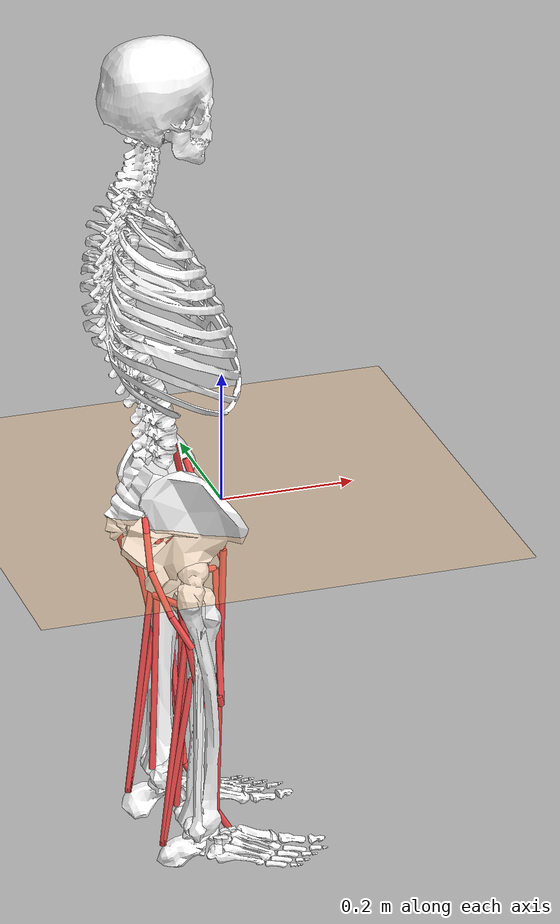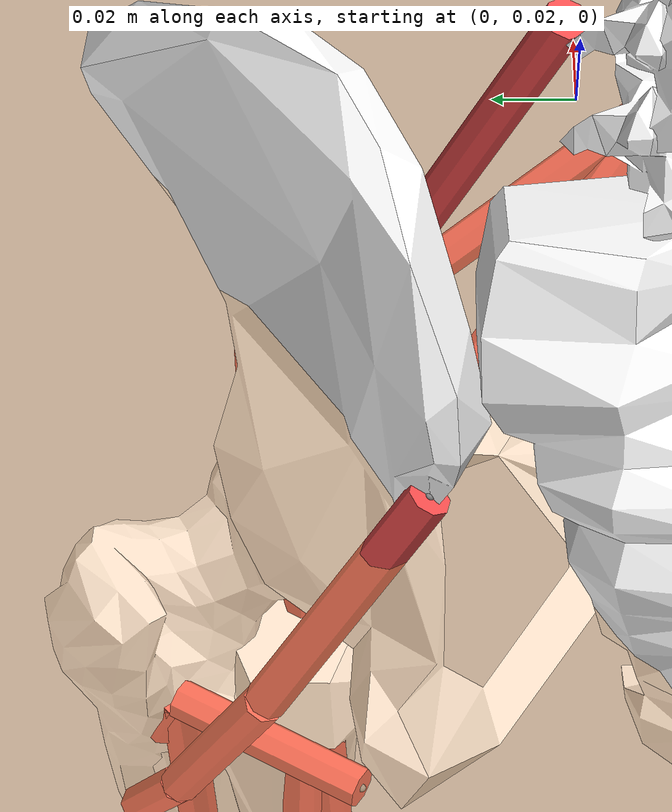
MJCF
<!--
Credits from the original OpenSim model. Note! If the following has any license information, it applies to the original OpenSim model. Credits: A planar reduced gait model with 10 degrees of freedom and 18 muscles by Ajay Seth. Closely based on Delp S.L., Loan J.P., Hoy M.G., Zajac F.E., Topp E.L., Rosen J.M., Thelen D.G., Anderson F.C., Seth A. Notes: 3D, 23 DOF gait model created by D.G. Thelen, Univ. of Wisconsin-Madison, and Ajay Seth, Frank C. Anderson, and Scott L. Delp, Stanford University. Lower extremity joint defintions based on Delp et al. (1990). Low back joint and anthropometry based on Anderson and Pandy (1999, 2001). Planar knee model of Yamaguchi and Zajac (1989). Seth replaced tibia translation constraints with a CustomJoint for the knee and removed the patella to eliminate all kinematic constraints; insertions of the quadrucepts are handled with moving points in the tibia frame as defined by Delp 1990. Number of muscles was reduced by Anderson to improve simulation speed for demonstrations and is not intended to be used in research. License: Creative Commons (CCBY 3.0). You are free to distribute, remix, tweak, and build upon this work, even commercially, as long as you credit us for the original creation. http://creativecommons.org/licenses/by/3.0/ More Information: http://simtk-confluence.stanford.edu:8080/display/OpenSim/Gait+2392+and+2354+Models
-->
<mujoco model="template">
  <!-- This model has been converted from an OpenSim model. Model conversion by MyoConverter https://github.com/MyoHub/myoconverter. This model is licensed under Apache 2.0. -->
  <!-- Note: inertiagrouprange="0 1" means that groups 0-1 will be used to infer masses/inertias, and groups 2-5 are
  only for visualisation (e.g. wrapping objects) !-->
  <compiler inertiafromgeom="auto" angle="radian" balanceinertia="true" boundmass="0.001" boundinertia="0.001" inertiagrouprange="0 1">
    <lengthrange inttotal="50" useexisting="true"/>
  </compiler>
  <option collision="predefined"/>
  <visual>
    <scale framelength="0.5" framewidth="0.01"/>
  </visual>
  <default>
    <joint limited="true" damping="0.05" armature="0.00001" stiffness="0"/>
    <geom rgba="0.8 0.6 .4 1" margin="0.001"/>
    <site size="0.001"/>
    <tendon width="0.005" rgba=".95 .3 .3 1" limited="false"/>
    <default class="muscle">
      <muscle ctrllimited="true" ctrlrange="0 1" scale="200"/>
    </default>
    <default class="motor">
      <general gainprm="5 0 0 0 0 0 0 0 0 0"/>
    </default>
  </default>
  <option timestep="0.002"/>
  <!-- nuser_jnt=1, the parameter is used to store default value of the joint, and nkey=1 to store keyframe with
   default joint positions set !-->
  <size njmax="1000" nconmax="400" nuser_jnt="1" nkey="1"/>
  <worldbody>
    <!-- The converter script assumes a body named 'ground' exists as a child element of worldbody -->
    <body name="ground" euler="1.571 0 0">
      <geom name="ground-plane" pos="0 0 0" euler="-1.571 0 0" size="10 10 0.125" type="plane" rgba="1.0 0.7 0.4 1.0" condim="3"/>
    </body>
    <light directional="true"/>
    <body name="pelvis" pos="0 0 0" euler="1.571 0 0">
      <inertial mass="11.776999999999999" pos="-0.070699999999999999 0 0" fullinertia="0.1028 0.087099999999999997 0.0579 0 0 0"/>
      <geom name="pelvis_geom_1" type="mesh" mesh="pelvis_geom_1_sacrum" rgba="1 1 1 1" group="0"/>
      <geom name="pelvis_geom_2" type="mesh" mesh="pelvis_geom_2_pelvis" rgba="1 1 1 1" group="0"/>
      <geom name="pelvis_geom_3" type="mesh" mesh="pelvis_geom_3_l_pelvis" rgba="1 1 1 1" group="0"/>
      <joint name="pelvis_tx" range="-5 5" limited="true" user="0.0" ref="0" axis="1 0 0" type="slide" damping="0" stiffness="0"/>
      <joint name="pelvis_ty" range="-1 2" limited="true" user="0.95" ref="0" axis="0 1 0" type="slide" damping="0" stiffness="0"/>
      <joint name="pelvis_tilt" range="-1.571 1.571" limited="true" user="0.0" ref="0" axis="0 0 1" type="hinge" damping="0" stiffness="0"/>
      <body name="femur_r" pos="-0.0707 -0.0661 0.0835" euler="-0 0 0">
        <inertial mass="9.3013999999999992" pos="0 -0.17000000000000001 0" fullinertia="0.13389999999999999 0.035099999999999999 0.14119999999999999 0 0 0"/>
        <geom name="femur_r_geom_1" type="mesh" mesh="femur_r_geom_1_femur_r" rgba="1 1 1 1" group="0"/>
        <joint name="hip_flexion_r" range="-2.094 2.094" limited="true" user="0.0" ref="0" type="hinge" axis="0 0 1"/>
        <body name="tibia_r" pos="0 0 0" euler="-0 0 0">
          <inertial mass="3.7075" pos="0 -0.1867 0" fullinertia="0.0504 0.0051000000000000004 0.0511 0 0 0"/>
          <geom name="tibia_r_geom_1" type="mesh" mesh="tibia_r_geom_1_tibia_r" rgba="1 1 1 1" group="0"/>
          <geom name="tibia_r_geom_2" type="mesh" mesh="tibia_r_geom_2_fibula" rgba="1 1 1 1" group="0"/>
          <joint name="knee_r_translation1" range="-0.005574 0.00411" limited="true" user="-0.003639246630402602" ref="0" axis="1 0 0" type="slide"/>
          <joint name="knee_r_translation2" range="-0.4226 -0.3953" limited="true" user="-0.39571344513759127" ref="0" axis="0 1 0" type="slide"/>
          <joint name="knee_angle_r" range="-2.094 0.1745" limited="true" user="0.0" ref="0" axis="0 0 1" type="hinge"/>
          <body name="talus_r" pos="0 -0.43 0" euler="-0 0 0">
            <inertial mass="0.10000000000000001" pos="0 0 0" fullinertia="0.001 0.001 0.001 0 0 0"/>
            <geom name="talus_r_geom_1" type="mesh" mesh="talus_r_geom_1_talus" rgba="1 1 1 1" group="0"/>
            <joint name="ankle_angle_r" range="-1.571 1.571" limited="true" user="0.0" ref="0" type="hinge" axis="0 0 1"/>
            <body name="calcn_r" pos="-0.04877 -0.04195 0.00792" euler="-0 0 0">
              <inertial mass="1.25" pos="0.10000000000000001 0.029999999999999999 0" fullinertia="0.0014 0.0038999999999999998 0.0041000000000000003 0 0 0"/>
              <geom name="calcn_r_geom_1" type="mesh" mesh="calcn_r_geom_1_foot" rgba="1 1 1 1" group="0"/>
              <body name="toes_r" pos="0.1788 -0.002 0.00108" euler="-0 0 0">
                <inertial mass="0.21659999999999999" pos="0.034599999999999999 0.0060000000000000001 -0.017500000000000002" fullinertia="0.0001 0.00020000000000000001 0.0001 0 0 0"/>
                <geom name="toes_r_geom_1" type="mesh" mesh="toes_r_geom_1_bofoot" rgba="1 1 1 1" group="0"/>
              </body>
              <site name="gastroc_r_med_gas_r-P3" pos="0 0.031 -0.0053"/>
              <site name="soleus_r_soleus_r-P2" pos="0 0.031 -0.0053"/>
              <site name="tib_ant_r_tib_ant_r-P3" pos="0.1166 0.0178 -0.030499999999999999"/>
            </body>
          </body>
          <site name="hamstrings_r_bifemlh_r-P2" pos="-0.030099999999999998 -0.035999999999999997 0.029430000000000001"/>
          <site name="hamstrings_r_bifemlh_r-P3" pos="-0.023400000000000001 -0.056300000000000003 0.034299999999999997"/>
          <site name="bifemsh_r_bifemsh_r-P2" pos="-0.030099999999999998 -0.035999999999999997 0.029430000000000001"/>
          <site name="bifemsh_r_bifemsh_r-P3" pos="-0.023400000000000001 -0.056300000000000003 0.034299999999999997"/>
          <body name="rect_fem_r_rect_fem_r-P3" pos="0 0 0.001399">
            <geom size="0.0005 0.0005 0.0005" rgba="0.0 0.0 1.0 0.0" contype="2" conaffinity="2"/>
            <joint name="rect_fem_r_rect_fem_r-P3_x" type="slide" axis="1 0 0" range="0.01558 0.0733"/>
            <joint name="rect_fem_r_rect_fem_r-P3_y" type="slide" axis="0 1 0" range="-0.06738 0.02531"/>
            <site name="rect_fem_r_rect_fem_r-P3"/>
          </body>
          <body name="vasti_r_vas_int_r-P4" pos="0 0 0.001799">
            <geom size="0.0005 0.0005 0.0005" rgba="0.0 0.0 1.0 0.0" contype="2" conaffinity="2"/>
            <joint name="vasti_r_vas_int_r-P4_x" type="slide" axis="1 0 0" range="0.008273 0.06844"/>
            <joint name="vasti_r_vas_int_r-P4_y" type="slide" axis="0 1 0" range="-0.06857 0.02752"/>
            <site name="vasti_r_vas_int_r-P4"/>
          </body>
          <site name="soleus_r_soleus_r-P1" pos="-0.0023999999999999998 -0.15329999999999999 0.0071000000000000004"/>
          <site name="tib_ant_r_tib_ant_r-P1" pos="0.017899999999999999 -0.16239999999999999 0.0115"/>
          <site name="tib_ant_r_tib_ant_r-P2" pos="0.032899999999999999 -0.39510000000000001 -0.0177"/>
        </body>
        <site name="bifemsh_r_bifemsh_r-P1" pos="0.0050000000000000001 -0.21110000000000001 0.023400000000000001"/>
        <site name="glut_max_r_glut_max_r-P3" pos="-0.042599999999999999 -0.052999999999999999 0.0293"/>
        <site name="glut_max_r_glut_max_r-P4" pos="-0.015599999999999999 -0.1016 0.0419"/>
        <site name="iliopsoas_r_psoas_r-P4" pos="0.0016000000000000001 -0.050700000000000002 0.0038"/>
        <site name="iliopsoas_r_psoas_r-P5" pos="-0.018800000000000001 -0.059700000000000003 0.0104"/>
        <site name="rect_fem_r_rect_fem_r-P2" pos="0.033399999999999999 -0.40300000000000002 0.0019"/>
        <site name="vasti_r_vas_int_r-P1" pos="0.029000000000000001 -0.19239999999999999 0.031"/>
        <site name="vasti_r_vas_int_r-P2" pos="0.033500000000000002 -0.2084 0.028500000000000001"/>
        <body name="vasti_r_vas_int_r-P3" pos="0.0335 0 0">
          <geom size="0.0005 0.0005 0.0005" rgba="0.0 0.0 1.0 0.0" contype="2" conaffinity="2"/>
          <joint name="vasti_r_vas_int_r-P3_y" type="slide" axis="0 1 0" range="-0.403 -0.2084"/>
          <joint name="vasti_r_vas_int_r-P3_z" type="slide" axis="0 0 1" range="0.0055 0.0285"/>
          <site name="vasti_r_vas_int_r-P3"/>
        </body>
        <site name="gastroc_r_med_gas_r-P1" pos="-0.019 -0.39290000000000003 -0.0235"/>
        <body name="gastroc_r_med_gas_r-P2" pos="0 0 0">
          <geom size="0.0005 0.0005 0.0005" rgba="0.0 0.0 1.0 0.0" contype="2" conaffinity="2"/>
          <joint name="gastroc_r_med_gas_r-P2_x" type="slide" axis="1 0 0" range="-0.03 -0.019"/>
          <joint name="gastroc_r_med_gas_r-P2_y" type="slide" axis="0 1 0" range="-0.4022 -0.3929"/>
          <joint name="gastroc_r_med_gas_r-P2_z" type="slide" axis="0 0 1" range="-0.0258 -0.0235"/>
          <site name="gastroc_r_med_gas_r-P2"/>
        </body>
      </body>
      <body name="femur_l" pos="-0.0707 -0.0661 -0.0835" euler="-0 0 0">
        <inertial mass="9.3013999999999992" pos="0 -0.17000000000000001 0" fullinertia="0.13389999999999999 0.035099999999999999 0.14119999999999999 0 0 0"/>
        <geom name="femur_l_geom_1" type="mesh" mesh="femur_l_geom_1_femur_l" rgba="1 1 1 1" group="0"/>
        <joint name="hip_flexion_l" range="-2.094 2.094" limited="true" user="0.0" ref="0" type="hinge" axis="0 0 1"/>
        <body name="tibia_l" pos="0 0 0" euler="-0 0 0">
          <inertial mass="3.7075" pos="0 -0.1867 0" fullinertia="0.0504 0.0051000000000000004 0.0511 0 0 0"/>
          <geom name="tibia_l_geom_1" type="mesh" mesh="tibia_l_geom_1_tibia_l" rgba="1 1 1 1" group="0"/>
          <geom name="tibia_l_geom_2" type="mesh" mesh="tibia_l_geom_2_l_fibula" rgba="1 1 1 1" group="0"/>
          <joint name="knee_l_translation1" range="-0.005574 0.00411" limited="true" user="-0.003639246630402602" ref="0" axis="1 0 0" type="slide"/>
          <joint name="knee_l_translation2" range="-0.4226 -0.3953" limited="true" user="-0.39571344513759127" ref="0" axis="0 1 0" type="slide"/>
          <joint name="knee_angle_l" range="-2.094 0.1745" limited="true" user="0.0" ref="0" axis="0 0 1" type="hinge"/>
          <body name="talus_l" pos="0 -0.43 0" euler="-0 0 0">
            <inertial mass="0.10000000000000001" pos="0 0 0" fullinertia="0.001 0.001 0.001 0 0 0"/>
            <geom name="talus_l_geom_1" type="mesh" mesh="talus_l_geom_1_l_talus" rgba="1 1 1 1" group="0"/>
            <joint name="ankle_angle_l" range="-1.571 1.571" limited="true" user="0.0" ref="0" type="hinge" axis="0 0 1"/>
            <body name="calcn_l" pos="-0.04877 -0.04195 -0.00792" euler="-0 0 0">
              <inertial mass="1.25" pos="0.10000000000000001 0.029999999999999999 0" fullinertia="0.0014 0.0038999999999999998 0.0041000000000000003 0 0 0"/>
              <geom name="calcn_l_geom_1" type="mesh" mesh="calcn_l_geom_1_l_foot" rgba="1 1 1 1" group="0"/>
              <body name="toes_l" pos="0.1788 -0.002 -0.00108" euler="-0 0 0">
                <inertial mass="0.21659999999999999" pos="0.034599999999999999 0.0060000000000000001 0.017500000000000002" fullinertia="0.0001 0.00020000000000000001 0.0001 0 0 0"/>
                <geom name="toes_l_geom_1" type="mesh" mesh="toes_l_geom_1_l_bofoot" rgba="1 1 1 1" group="0"/>
              </body>
              <site name="gastroc_l_med_gas_l-P3" pos="0 0.031 0.0053"/>
              <site name="soleus_l_soleus_l-P2" pos="0 0.031 0.0053"/>
              <site name="tib_ant_l_tib_ant_l-P3" pos="0.1166 0.0178 0.030499999999999999"/>
            </body>
          </body>
          <site name="hamstrings_l_bifemlh_l-P2" pos="-0.030099999999999998 -0.035999999999999997 -0.029430000000000001"/>
          <site name="hamstrings_l_bifemlh_l-P3" pos="-0.023400000000000001 -0.056300000000000003 -0.034299999999999997"/>
          <site name="bifemsh_l_bifemsh_l-P2" pos="-0.030099999999999998 -0.035999999999999997 -0.029430000000000001"/>
          <site name="bifemsh_l_bifemsh_l-P3" pos="-0.023400000000000001 -0.056300000000000003 -0.034299999999999997"/>
          <body name="rect_fem_l_rect_fem_l-P3" pos="0 0 -0.001401">
            <geom size="0.0005 0.0005 0.0005" rgba="0.0 0.0 1.0 0.0" contype="2" conaffinity="2"/>
            <joint name="rect_fem_l_rect_fem_l-P3_x" type="slide" axis="1 0 0" range="0.01558 0.0733"/>
            <joint name="rect_fem_l_rect_fem_l-P3_y" type="slide" axis="0 1 0" range="-0.06738 0.02531"/>
            <site name="rect_fem_l_rect_fem_l-P3"/>
          </body>
          <body name="vasti_l_vas_int_l-P4" pos="0 0 -0.001801">
            <geom size="0.0005 0.0005 0.0005" rgba="0.0 0.0 1.0 0.0" contype="2" conaffinity="2"/>
            <joint name="vasti_l_vas_int_l-P4_x" type="slide" axis="1 0 0" range="0.008273 0.06844"/>
            <joint name="vasti_l_vas_int_l-P4_y" type="slide" axis="0 1 0" range="-0.06857 0.02752"/>
            <site name="vasti_l_vas_int_l-P4"/>
          </body>
          <site name="soleus_l_soleus_l-P1" pos="-0.0023999999999999998 -0.15329999999999999 -0.0071000000000000004"/>
          <site name="tib_ant_l_tib_ant_l-P1" pos="0.017899999999999999 -0.16239999999999999 -0.0115"/>
          <site name="tib_ant_l_tib_ant_l-P2" pos="0.032899999999999999 -0.39510000000000001 0.0177"/>
        </body>
        <site name="bifemsh_l_bifemsh_l-P1" pos="0.0050000000000000001 -0.21110000000000001 -0.023400000000000001"/>
        <site name="glut_max_l_glut_max_l-P3" pos="-0.042599999999999999 -0.052999999999999999 -0.0293"/>
        <site name="glut_max_l_glut_max_l-P4" pos="-0.015599999999999999 -0.1016 -0.0419"/>
        <site name="iliopsoas_l_psoas_l-P4" pos="0.0016000000000000001 -0.050700000000000002 -0.0038"/>
        <site name="iliopsoas_l_psoas_l-P5" pos="-0.018800000000000001 -0.059700000000000003 -0.0104"/>
        <site name="rect_fem_l_rect_fem_l-P2" pos="0.033399999999999999 -0.40300000000000002 -0.0019"/>
        <site name="vasti_l_vas_int_l-P1" pos="0.029000000000000001 -0.19239999999999999 -0.031"/>
        <site name="vasti_l_vas_int_l-P2" pos="0.033500000000000002 -0.2084 -0.028500000000000001"/>
        <body name="vasti_l_vas_int_l-P3" pos="0.0335 0 0">
          <geom size="0.0005 0.0005 0.0005" rgba="0.0 0.0 1.0 0.0" contype="2" conaffinity="2"/>
          <joint name="vasti_l_vas_int_l-P3_y" type="slide" axis="0 1 0" range="-0.403 -0.2084"/>
          <joint name="vasti_l_vas_int_l-P3_z" type="slide" axis="0 0 1" range="-0.0285 -0.0055"/>
          <site name="vasti_l_vas_int_l-P3"/>
        </body>
        <site name="gastroc_l_med_gas_l-P1" pos="-0.019 -0.39290000000000003 0.0235"/>
        <body name="gastroc_l_med_gas_l-P2" pos="0 0 0">
          <geom size="0.0005 0.0005 0.0005" rgba="0.0 0.0 1.0 0.0" contype="2" conaffinity="2"/>
          <joint name="gastroc_l_med_gas_l-P2_x" type="slide" axis="1 0 0" range="-0.03 -0.019"/>
          <joint name="gastroc_l_med_gas_l-P2_y" type="slide" axis="0 1 0" range="-0.4022 -0.3929"/>
          <joint name="gastroc_l_med_gas_l-P2_z" type="slide" axis="0 0 1" range="0.0235 0.0258"/>
          <site name="gastroc_l_med_gas_l-P2"/>
        </body>
      </body>
      <body name="torso" pos="-0.1007 0.0815 0" euler="-0 0 0">
        <inertial mass="34.236600000000003" pos="-0.029999999999999999 0.32000000000000001 0" fullinertia="1.4744999999999999 0.75549999999999995 1.4314 0 0 0"/>
        <geom name="torso_geom_1" type="mesh" mesh="torso_geom_1_hat_spine" rgba="1 1 1 1" group="0"/>
        <geom name="torso_geom_2" type="mesh" mesh="torso_geom_2_hat_jaw" rgba="1 1 1 1" group="0"/>
        <geom name="torso_geom_3" type="mesh" mesh="torso_geom_3_hat_skull" rgba="1 1 1 1" group="0"/>
        <geom name="torso_geom_4" type="mesh" mesh="torso_geom_4_hat_ribs" rgba="1 1 1 1" group="0"/>
        <joint name="lumbar_extension" range="-1.571 1.571" limited="true" user="0.0" ref="0" type="hinge" axis="0 0 1"/>
      </body>
      <site name="hamstrings_r_bifemlh_r-P1" pos="-0.12595999999999999 -0.10256999999999999 0.069440000000000002"/>
      <site name="glut_max_r_glut_max_r-P1" pos="-0.13489999999999999 0.017600000000000001 0.056300000000000003"/>
      <site name="glut_max_r_glut_max_r-P2" pos="-0.1376 -0.051999999999999998 0.091399999999999995"/>
      <site name="iliopsoas_r_psoas_r-P1" pos="-0.064699999999999994 0.088700000000000001 0.028899999999999999"/>
      <site name="iliopsoas_r_psoas_r-P2" pos="-0.023800000000000002 -0.057000000000000002 0.075899999999999995"/>
      <body name="iliopsoas_r_psoas_r-P3" pos="0 0 0">
        <geom size="0.0005 0.0005 0.0005" rgba="0.0 0.0 1.0 0.0" contype="2" conaffinity="2"/>
        <joint name="iliopsoas_r_psoas_r-P3_x" type="slide" axis="1 0 0" range="-0.0288 -0.0238"/>
        <joint name="iliopsoas_r_psoas_r-P3_y" type="slide" axis="0 1 0" range="-0.0805 -0.057"/>
        <joint name="iliopsoas_r_psoas_r-P3_z" type="slide" axis="0 0 1" range="0.0759 0.0816"/>
        <site name="iliopsoas_r_psoas_r-P3"/>
      </body>
      <site name="rect_fem_r_rect_fem_r-P1" pos="-0.029499999999999998 -0.031099999999999999 0.096799999999999997"/>
      <site name="hamstrings_l_bifemlh_l-P1" pos="-0.12595999999999999 -0.10256999999999999 -0.069440000000000002"/>
      <site name="glut_max_l_glut_max_l-P1" pos="-0.13489999999999999 0.017600000000000001 -0.056300000000000003"/>
      <site name="glut_max_l_glut_max_l-P2" pos="-0.1376 -0.051999999999999998 -0.091399999999999995"/>
      <site name="iliopsoas_l_psoas_l-P1" pos="-0.064699999999999994 0.088700000000000001 -0.028899999999999999"/>
      <site name="iliopsoas_l_psoas_l-P2" pos="-0.023800000000000002 -0.057000000000000002 -0.075899999999999995"/>
      <body name="iliopsoas_l_psoas_l-P3" pos="0 0 0">
        <geom size="0.0005 0.0005 0.0005" rgba="0.0 0.0 1.0 0.0" contype="2" conaffinity="2"/>
        <joint name="iliopsoas_l_psoas_l-P3_x" type="slide" axis="1 0 0" range="-0.0288 -0.0238"/>
        <joint name="iliopsoas_l_psoas_l-P3_y" type="slide" axis="0 1 0" range="-0.0805 -0.057"/>
        <joint name="iliopsoas_l_psoas_l-P3_z" type="slide" axis="0 0 1" range="-0.0816 -0.0759"/>
        <site name="iliopsoas_l_psoas_l-P3"/>
      </body>
      <site name="rect_fem_l_rect_fem_l-P1" pos="-0.029499999999999998 -0.031099999999999999 -0.096799999999999997"/>
    </body>
  </worldbody>
  <asset>
    <texture type="skybox" builtin="gradient" rgb1="1 1 1" rgb2="0.6 0.8 1" width="256" height="256"/>
    <mesh name="pelvis_geom_1_sacrum" file="Geometry/sacrum.stl" scale="1 1 1"/>
    <mesh name="pelvis_geom_2_pelvis" file="Geometry/pelvis.stl" scale="1 1 1"/>
    <mesh name="pelvis_geom_3_l_pelvis" file="Geometry/l_pelvis.stl" scale="1 1 1"/>
    <mesh name="femur_r_geom_1_femur_r" file="Geometry/femur_r.stl" scale="1 1 1"/>
    <mesh name="tibia_r_geom_1_tibia_r" file="Geometry/tibia_r.stl" scale="1 1 1"/>
    <mesh name="tibia_r_geom_2_fibula" file="Geometry/fibula.stl" scale="1 1 1"/>
    <mesh name="talus_r_geom_1_talus" file="Geometry/talus.stl" scale="1 1 1"/>
    <mesh name="calcn_r_geom_1_foot" file="Geometry/foot.stl" scale="1 1 1"/>
    <mesh name="toes_r_geom_1_bofoot" file="Geometry/bofoot.stl" scale="1 1 1"/>
    <mesh name="femur_l_geom_1_femur_l" file="Geometry/femur_l.stl" scale="1 1 1"/>
    <mesh name="tibia_l_geom_1_tibia_l" file="Geometry/tibia_l.stl" scale="1 1 1"/>
    <mesh name="tibia_l_geom_2_l_fibula" file="Geometry/l_fibula.stl" scale="1 1 1"/>
    <mesh name="talus_l_geom_1_l_talus" file="Geometry/l_talus.stl" scale="1 1 1"/>
    <mesh name="calcn_l_geom_1_l_foot" file="Geometry/l_foot.stl" scale="1 1 1"/>
    <mesh name="toes_l_geom_1_l_bofoot" file="Geometry/l_bofoot.stl" scale="1 1 1"/>
    <mesh name="torso_geom_1_hat_spine" file="Geometry/hat_spine.stl" scale="1 1 1"/>
    <mesh name="torso_geom_2_hat_jaw" file="Geometry/hat_jaw.stl" scale="1 1 1"/>
    <mesh name="torso_geom_3_hat_skull" file="Geometry/hat_skull.stl" scale="1 1 1"/>
    <mesh name="torso_geom_4_hat_ribs" file="Geometry/hat_ribs.stl" scale="1 1 1"/>
  </asset>
  <tendon>
    <!-- Leave this comment here to make 'tendon' element pretty printed !-->
    <spatial name="hamstrings_r_tendon">
      <site site="hamstrings_r_bifemlh_r-P1"/>
      <site site="hamstrings_r_bifemlh_r-P2"/>
      <site site="hamstrings_r_bifemlh_r-P3"/>
    </spatial>
    <spatial name="bifemsh_r_tendon">
      <site site="bifemsh_r_bifemsh_r-P1"/>
      <site site="bifemsh_r_bifemsh_r-P2"/>
      <site site="bifemsh_r_bifemsh_r-P3"/>
    </spatial>
    <spatial name="glut_max_r_tendon">
      <site site="glut_max_r_glut_max_r-P1"/>
      <site site="glut_max_r_glut_max_r-P2"/>
      <site site="glut_max_r_glut_max_r-P3"/>
      <site site="glut_max_r_glut_max_r-P4"/>
    </spatial>
    <spatial name="iliopsoas_r_tendon">
      <site site="iliopsoas_r_psoas_r-P1"/>
      <site site="iliopsoas_r_psoas_r-P2"/>
      <site site="iliopsoas_r_psoas_r-P3"/>
      <site site="iliopsoas_r_psoas_r-P4"/>
      <site site="iliopsoas_r_psoas_r-P5"/>
    </spatial>
    <spatial name="rect_fem_r_tendon">
      <site site="rect_fem_r_rect_fem_r-P1"/>
      <site site="rect_fem_r_rect_fem_r-P2"/>
      <site site="rect_fem_r_rect_fem_r-P3"/>
    </spatial>
    <spatial name="vasti_r_tendon">
      <site site="vasti_r_vas_int_r-P1"/>
      <site site="vasti_r_vas_int_r-P2"/>
      <site site="vasti_r_vas_int_r-P3"/>
      <site site="vasti_r_vas_int_r-P4"/>
    </spatial>
    <spatial name="gastroc_r_tendon">
      <site site="gastroc_r_med_gas_r-P1"/>
      <site site="gastroc_r_med_gas_r-P2"/>
      <site site="gastroc_r_med_gas_r-P3"/>
    </spatial>
    <spatial name="soleus_r_tendon">
      <site site="soleus_r_soleus_r-P1"/>
      <site site="soleus_r_soleus_r-P2"/>
    </spatial>
    <spatial name="tib_ant_r_tendon">
      <site site="tib_ant_r_tib_ant_r-P1"/>
      <site site="tib_ant_r_tib_ant_r-P2"/>
      <site site="tib_ant_r_tib_ant_r-P3"/>
    </spatial>
    <spatial name="hamstrings_l_tendon">
      <site site="hamstrings_l_bifemlh_l-P1"/>
      <site site="hamstrings_l_bifemlh_l-P2"/>
      <site site="hamstrings_l_bifemlh_l-P3"/>
    </spatial>
    <spatial name="bifemsh_l_tendon">
      <site site="bifemsh_l_bifemsh_l-P1"/>
      <site site="bifemsh_l_bifemsh_l-P2"/>
      <site site="bifemsh_l_bifemsh_l-P3"/>
    </spatial>
    <spatial name="glut_max_l_tendon">
      <site site="glut_max_l_glut_max_l-P1"/>
      <site site="glut_max_l_glut_max_l-P2"/>
      <site site="glut_max_l_glut_max_l-P3"/>
      <site site="glut_max_l_glut_max_l-P4"/>
    </spatial>
    <spatial name="iliopsoas_l_tendon">
      <site site="iliopsoas_l_psoas_l-P1"/>
      <site site="iliopsoas_l_psoas_l-P2"/>
      <site site="iliopsoas_l_psoas_l-P3"/>
      <site site="iliopsoas_l_psoas_l-P4"/>
      <site site="iliopsoas_l_psoas_l-P5"/>
    </spatial>
    <spatial name="rect_fem_l_tendon">
      <site site="rect_fem_l_rect_fem_l-P1"/>
      <site site="rect_fem_l_rect_fem_l-P2"/>
      <site site="rect_fem_l_rect_fem_l-P3"/>
    </spatial>
    <spatial name="vasti_l_tendon">
      <site site="vasti_l_vas_int_l-P1"/>
      <site site="vasti_l_vas_int_l-P2"/>
      <site site="vasti_l_vas_int_l-P3"/>
      <site site="vasti_l_vas_int_l-P4"/>
    </spatial>
    <spatial name="gastroc_l_tendon">
      <site site="gastroc_l_med_gas_l-P1"/>
      <site site="gastroc_l_med_gas_l-P2"/>
      <site site="gastroc_l_med_gas_l-P3"/>
    </spatial>
    <spatial name="soleus_l_tendon">
      <site site="soleus_l_soleus_l-P1"/>
      <site site="soleus_l_soleus_l-P2"/>
    </spatial>
    <spatial name="tib_ant_l_tendon">
      <site site="tib_ant_l_tib_ant_l-P1"/>
      <site site="tib_ant_l_tib_ant_l-P2"/>
      <site site="tib_ant_l_tib_ant_l-P3"/>
    </spatial>
  </tendon>
  <actuator>
    <!-- Leave this comment here to make 'actuator' element pretty printed !-->
    <muscle name="hamstrings_r" lengthrange="0.01 1" force="2700" tendon="hamstrings_r_tendon" class="muscle" timeconst="0.01 0.04"/>
    <muscle name="bifemsh_r" lengthrange="0.01 1" force="804" tendon="bifemsh_r_tendon" class="muscle" timeconst="0.01 0.04"/>
    <muscle name="glut_max_r" lengthrange="0.01 1" force="1944" tendon="glut_max_r_tendon" class="muscle" timeconst="0.01 0.04"/>
    <muscle name="iliopsoas_r" lengthrange="0.01 1" force="2342" tendon="iliopsoas_r_tendon" class="muscle" timeconst="0.01 0.04"/>
    <muscle name="rect_fem_r" lengthrange="0.01 1" force="1169" tendon="rect_fem_r_tendon" class="muscle" timeconst="0.01 0.04"/>
    <muscle name="vasti_r" lengthrange="0.01 1" force="5000" tendon="vasti_r_tendon" class="muscle" timeconst="0.01 0.04"/>
    <muscle name="gastroc_r" lengthrange="0.01 1" force="2500" tendon="gastroc_r_tendon" class="muscle" timeconst="0.01 0.04"/>
    <muscle name="soleus_r" lengthrange="0.01 1" force="5137" tendon="soleus_r_tendon" class="muscle" timeconst="0.01 0.04"/>
    <muscle name="tib_ant_r" lengthrange="0.01 1" force="3000" tendon="tib_ant_r_tendon" class="muscle" timeconst="0.01 0.04"/>
    <muscle name="hamstrings_l" lengthrange="0.01 1" force="2700" tendon="hamstrings_l_tendon" class="muscle" timeconst="0.01 0.04"/>
    <muscle name="bifemsh_l" lengthrange="0.01 1" force="804" tendon="bifemsh_l_tendon" class="muscle" timeconst="0.01 0.04"/>
    <muscle name="glut_max_l" lengthrange="0.01 1" force="1944" tendon="glut_max_l_tendon" class="muscle" timeconst="0.01 0.04"/>
    <muscle name="iliopsoas_l" lengthrange="0.01 1" force="2342" tendon="iliopsoas_l_tendon" class="muscle" timeconst="0.01 0.04"/>
    <muscle name="rect_fem_l" lengthrange="0.01 1" force="1169" tendon="rect_fem_l_tendon" class="muscle" timeconst="0.01 0.04"/>
    <muscle name="vasti_l" lengthrange="0.01 1" force="5000" tendon="vasti_l_tendon" class="muscle" timeconst="0.01 0.04"/>
    <muscle name="gastroc_l" lengthrange="0.01 1" force="2500" tendon="gastroc_l_tendon" class="muscle" timeconst="0.01 0.04"/>
    <muscle name="soleus_l" lengthrange="0.01 1" force="5137" tendon="soleus_l_tendon" class="muscle" timeconst="0.01 0.04"/>
    <muscle name="tib_ant_l" lengthrange="0.01 1" force="3000" tendon="tib_ant_l_tendon" class="muscle" timeconst="0.01 0.04"/>
  </actuator>
  <equality>
    <!-- Leave this comment here to make 'equality' element pretty printed !-->
    <joint joint1="knee_r_translation1" joint2="knee_angle_r" polycoef="-0.003639 -0.006267 0.002807 0.00134 -0.0006776" solimp="0.9999 0.9999 0.001 0.5 2" active="true"/>
    <joint joint1="knee_r_translation2" joint2="knee_angle_r" polycoef="-0.3957 0.003413 -0.005587 0.0006697 0.0005674" solimp="0.9999 0.9999 0.001 0.5 2" active="true"/>
    <joint joint1="knee_l_translation1" joint2="knee_angle_l" polycoef="-0.003639 -0.006267 0.002807 0.00134 -0.0006776" solimp="0.9999 0.9999 0.001 0.5 2" active="true"/>
    <joint joint1="knee_l_translation2" joint2="knee_angle_l" polycoef="-0.3957 0.003413 -0.005587 0.0006697 0.0005674" solimp="0.9999 0.9999 0.001 0.5 2" active="true"/>
    <joint joint1="iliopsoas_r_psoas_r-P3_x" joint2="hip_flexion_r" polycoef="-0.0288 3.222e-18 0.00114 0 0" solimp="0.9999 0.9999 0.001 0.5 2"/>
    <joint joint1="iliopsoas_r_psoas_r-P3_y" joint2="hip_flexion_r" polycoef="-0.0805 4.686e-18 0.005359 0 0" solimp="0.9999 0.9999 0.001 0.5 2"/>
    <joint joint1="iliopsoas_r_psoas_r-P3_z" joint2="hip_flexion_r" polycoef="0.0816 -4.686e-18 -0.0013 0 0" solimp="0.9999 0.9999 0.001 0.5 2"/>
    <joint joint1="rect_fem_r_rect_fem_r-P3_x" joint2="knee_angle_r" polycoef="0.06259 0.04199 0.01152 -0.007248 -0.004008" solimp="0.9999 0.9999 0.001 0.5 2"/>
    <joint joint1="rect_fem_r_rect_fem_r-P3_y" joint2="knee_angle_r" polycoef="0.02032 -0.01159 -0.008624 -0.002308 -0.0002292" solimp="0.9999 0.9999 0.001 0.5 2"/>
    <joint joint1="vasti_r_vas_int_r-P3_y" joint2="knee_angle_r" polycoef="-0.2234 0.08578 0 0 0" solimp="0.9999 0.9999 0.001 0.5 2"/>
    <joint joint1="vasti_r_vas_int_r-P3_z" joint2="knee_angle_r" polycoef="0.02673 0.01014 0 0 0" solimp="0.9999 0.9999 0.001 0.5 2"/>
    <joint joint1="vasti_r_vas_int_r-P4_x" joint2="knee_angle_r" polycoef="0.05647 0.04555 0.01393 -0.007247 -0.004235" solimp="0.9999 0.9999 0.001 0.5 2"/>
    <joint joint1="vasti_r_vas_int_r-P4_y" joint2="knee_angle_r" polycoef="0.02476 -0.006322 -0.00661 -0.003684 -0.0008973" solimp="0.9999 0.9999 0.001 0.5 2"/>
    <joint joint1="gastroc_r_med_gas_r-P2_x" joint2="knee_angle_r" polycoef="-0.02915 -0.004849 0 0 0" solimp="0.9999 0.9999 0.001 0.5 2"/>
    <joint joint1="gastroc_r_med_gas_r-P2_y" joint2="knee_angle_r" polycoef="-0.4015 -0.0041 0 0 0" solimp="0.9999 0.9999 0.001 0.5 2"/>
    <joint joint1="gastroc_r_med_gas_r-P2_z" joint2="knee_angle_r" polycoef="-0.02562 -0.001014 0 0 0" solimp="0.9999 0.9999 0.001 0.5 2"/>
    <joint joint1="iliopsoas_l_psoas_l-P3_x" joint2="hip_flexion_l" polycoef="-0.0288 3.222e-18 0.00114 0 0" solimp="0.9999 0.9999 0.001 0.5 2"/>
    <joint joint1="iliopsoas_l_psoas_l-P3_y" joint2="hip_flexion_l" polycoef="-0.0805 4.686e-18 0.005359 0 0" solimp="0.9999 0.9999 0.001 0.5 2"/>
    <joint joint1="iliopsoas_l_psoas_l-P3_z" joint2="hip_flexion_l" polycoef="-0.0816 4.686e-18 0.0013 0 0" solimp="0.9999 0.9999 0.001 0.5 2"/>
    <joint joint1="rect_fem_l_rect_fem_l-P3_x" joint2="knee_angle_l" polycoef="0.06259 0.04199 0.01152 -0.007248 -0.004008" solimp="0.9999 0.9999 0.001 0.5 2"/>
    <joint joint1="rect_fem_l_rect_fem_l-P3_y" joint2="knee_angle_l" polycoef="0.02032 -0.01159 -0.008624 -0.002308 -0.0002292" solimp="0.9999 0.9999 0.001 0.5 2"/>
    <joint joint1="vasti_l_vas_int_l-P3_y" joint2="knee_angle_l" polycoef="-0.2234 0.08578 0 0 0" solimp="0.9999 0.9999 0.001 0.5 2"/>
    <joint joint1="vasti_l_vas_int_l-P3_z" joint2="knee_angle_l" polycoef="-0.02673 -0.01014 0 0 0" solimp="0.9999 0.9999 0.001 0.5 2"/>
    <joint joint1="vasti_l_vas_int_l-P4_x" joint2="knee_angle_l" polycoef="0.05647 0.04555 0.01393 -0.007247 -0.004235" solimp="0.9999 0.9999 0.001 0.5 2"/>
    <joint joint1="vasti_l_vas_int_l-P4_y" joint2="knee_angle_l" polycoef="0.02476 -0.006322 -0.00661 -0.003684 -0.0008973" solimp="0.9999 0.9999 0.001 0.5 2"/>
    <joint joint1="gastroc_l_med_gas_l-P2_x" joint2="knee_angle_l" polycoef="-0.02915 -0.004849 0 0 0" solimp="0.9999 0.9999 0.001 0.5 2"/>
    <joint joint1="gastroc_l_med_gas_l-P2_y" joint2="knee_angle_l" polycoef="-0.4015 -0.0041 0 0 0" solimp="0.9999 0.9999 0.001 0.5 2"/>
    <joint joint1="gastroc_l_med_gas_l-P2_z" joint2="knee_angle_l" polycoef="0.02562 0.001014 0 0 0" solimp="0.9999 0.9999 0.001 0.5 2"/>
  </equality>
  <contact>
    <!-- Leave this comment here to make 'contact' element pretty printed !-->
    <pair geom1="ground-plane" geom2="pelvis_geom_1"/>
    <pair geom1="ground-plane" geom2="pelvis_geom_2"/>
    <pair geom1="ground-plane" geom2="pelvis_geom_3"/>
    <pair geom1="ground-plane" geom2="femur_r_geom_1"/>
    <pair geom1="ground-plane" geom2="tibia_r_geom_1"/>
    <pair geom1="ground-plane" geom2="tibia_r_geom_2"/>
    <pair geom1="ground-plane" geom2="talus_r_geom_1"/>
    <pair geom1="ground-plane" geom2="calcn_r_geom_1"/>
    <pair geom1="ground-plane" geom2="toes_r_geom_1"/>
    <pair geom1="ground-plane" geom2="femur_l_geom_1"/>
    <pair geom1="ground-plane" geom2="tibia_l_geom_1"/>
    <pair geom1="ground-plane" geom2="tibia_l_geom_2"/>
    <pair geom1="ground-plane" geom2="talus_l_geom_1"/>
    <pair geom1="ground-plane" geom2="calcn_l_geom_1"/>
    <pair geom1="ground-plane" geom2="toes_l_geom_1"/>
    <pair geom1="ground-plane" geom2="torso_geom_1"/>
    <pair geom1="ground-plane" geom2="torso_geom_2"/>
    <pair geom1="ground-plane" geom2="torso_geom_3"/>
    <pair geom1="ground-plane" geom2="torso_geom_4"/>
  </contact>
  <keyframe>
    <key name="default-pose" qpos="0 0.95 0 0 -0.003639 -0.3957 0 0 0.06259 0.02032 0.05647 0.02476 -0.2234 0.02673 -0.02915 -0.4015 -0.02562 0 -0.003639 -0.3957 0 0 0.06259 0.02032 0.05647 0.02476 -0.2234 -0.02673 -0.02915 -0.4015 0.02562 0 -0.0288 -0.0805 0.0816 -0.0288 -0.0805 -0.0816"/>
  </keyframe>
</mujoco>
